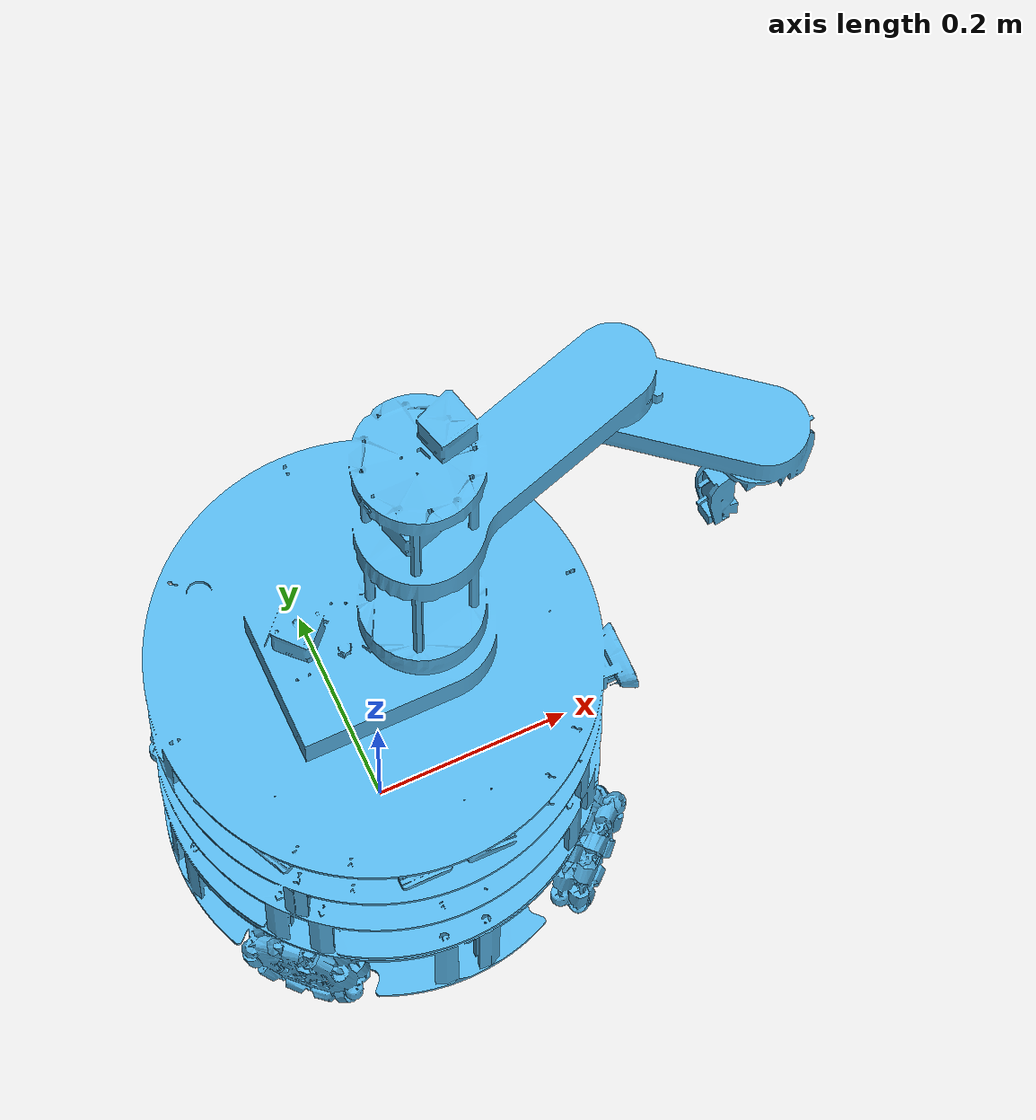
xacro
<?xml version="1.0"?>
<robot name="IRED">
    <link name="base_footprint"/>
    <link name="base_link">
        <visual>
            <origin xyz="-0.0913 0.0019 -0.1657" rpy="0.0 0.0 3.14159"/>
            <geometry>
                <mesh filename="package://ired_bringup/meshes/ired_body.stl" scale="0.001 0.001 0.001"/>
            </geometry>
        </visual>
    </link>
    <link name="wheel_front_left_link"/>
    <link name="wheel_front_right_link"/>
    <link name="wheel_rear_left_link"/>
    <link name="wheel_rear_right_link"/>
    <link name="base_scan"/>
    <link name="aruco_camera_link"/>
    <link name="base_cartesian_link"/>
    <link name="imu_link"/>

    <joint name="base_joint" type="fixed">
        <parent link="base_footprint"/>
        <child link="base_link"/>
        <origin xyz="0.0 0.0 0.11" rpy="0.0 0.0 0.0"/>
    </joint>

    <joint name="scan_joint" type="fixed">
        <parent link="base_link"/>
        <child link="base_scan"/>
        <origin xyz="0.0 0.0 0.195" rpy="0.0 0.0 0.0"/>
    </joint>

    <joint name="aruco_camera_joint" type="fixed">
        <parent link="base_link"/>
        <child link="aruco_camera_link"/>
        <origin xyz="0.25 -0.013 0.020" rpy="0.0 0.085 0.0"/>
    </joint>

    <joint name="base_cartesian_joint" type="fixed">
        <parent link="base_link"/>
        <child link="base_cartesian_link"/>
        <origin xyz="0.0 0.0 0.0" rpy="0.0 0.0 0.0"/>
    </joint>

    <joint name="imu_joint" type="fixed">
        <parent link="base_link"/>
        <child link="imu_link"/>
        <origin xyz="0.0 0.0 0.0" rpy="0.0 0.0 0.0"/>
    </joint>

    <joint name="wheel_front_right_joint" type="continuous">
        <parent link="base_link"/>
        <child link="wheel_front_right_link"/>
        <axis xyz="0 1 0"/>
        <origin xyz="0.156 -0.156 -0.045" rpy="0.0 0.0 -0.785398"/>
    </joint>

    <joint name="wheel_front_left_joint" type="continuous">
        <parent link="base_link"/>
        <child link="wheel_front_left_link"/>
        <axis xyz="0 1 0"/>
        <origin xyz="0.156 0.156 -0.045" rpy="0.0 0.0 0.785398"/>
    </joint>

    <joint name="wheel_rear_right_joint" type="continuous">
        <parent link="base_link"/>
        <child link="wheel_rear_right_link"/>
        <axis xyz="0 1 0"/>
        <origin xyz="-0.156 -0.156 -0.045" rpy="0.0 0.0 -2.35619"/>
    </joint>

    <joint name="wheel_rear_left_joint" type="continuous">
        <parent link="base_link"/>
        <child link="wheel_rear_left_link"/>
        <axis xyz="0 1 0"/>
        <origin xyz="-0.156 0.156 -0.045" rpy="0.0 0.0 2.35619"/>
    </joint>
</robot>
